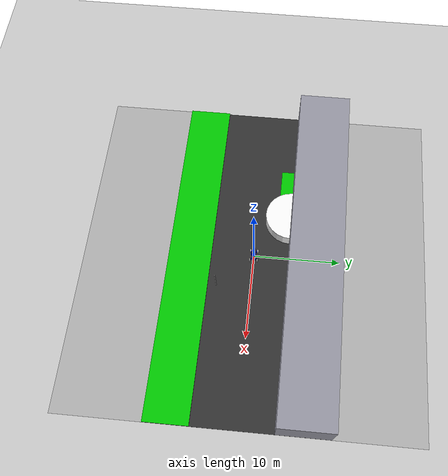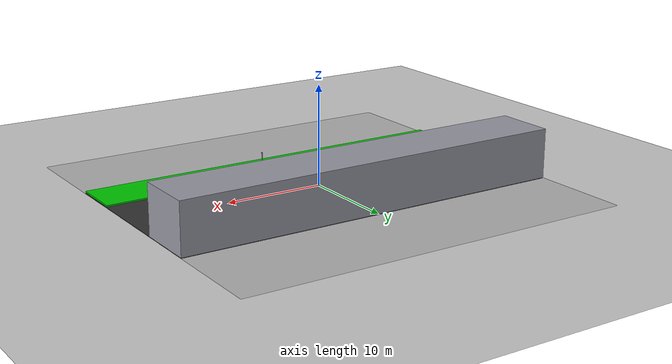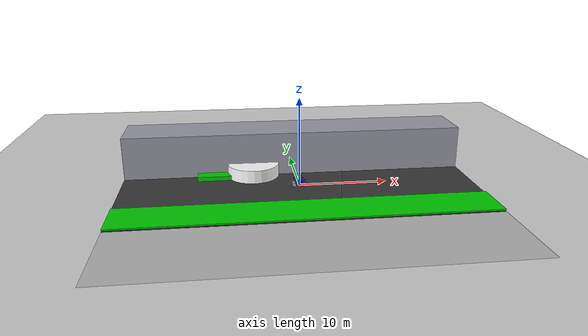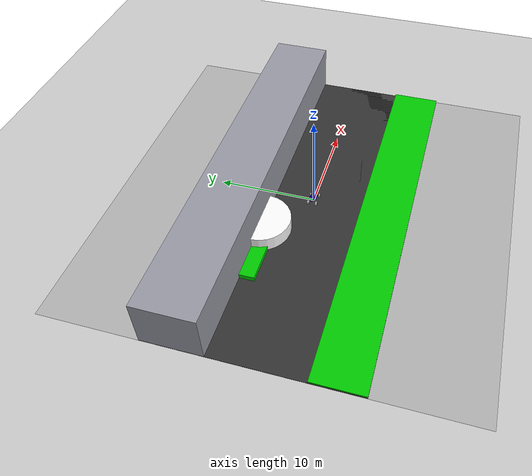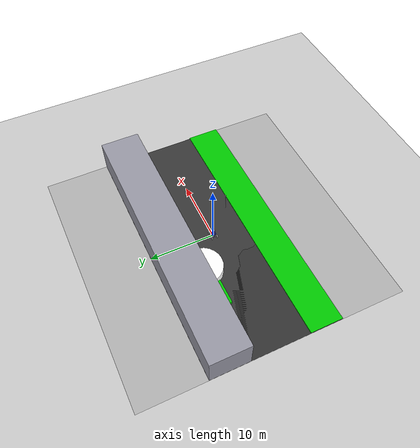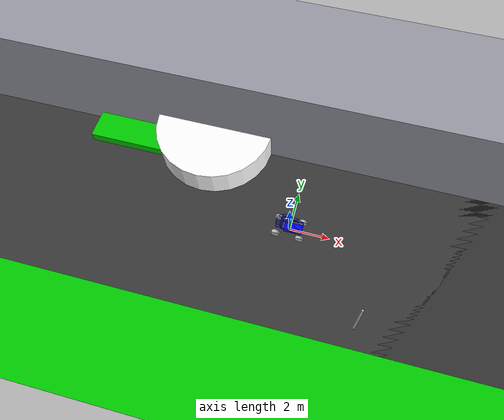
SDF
<sdf version="1.8">
 <world name="campus_world">
  <include><uri>file:///home/deyung/ros2_newws/src/mymasterproject/src/world/road.sdf</uri></include>
  <include>
   <uri>file:///home/deyung/ros2_newws/src/robot_description/worlds/new_car.sdf</uri>
   <name>newcar</name>
   <pose>0 0 0.2 0 0 0</pose>
  </include>
  <physics name="1ms" type="ode">
   <max_step_size>0.001</max_step_size>
   <real_time_factor>1.0</real_time_factor>
  </physics>
  <plugin filename="libactor_pose_ros2.so" name="actor_pose_ros2">
   <base_frame>map</base_frame>
   <name_prefix>actor_</name_prefix>
   <pose_topic>/actors/poses</pose_topic>
   <pose_topic_prefix>/actors/</pose_topic_prefix>
   <actor_yaw_offset_deg>-90</actor_yaw_offset_deg>
   <publish_tf>true</publish_tf>
  </plugin>
  <plugin filename="gz-sim-triggered-publisher-system" name="gz::sim::systems::TriggeredPublisher">
   <input type="gz.msgs.Int32" topic="/keyboard/keypress"><match field="data">16777235</match></input>
   <output type="gz.msgs.Twist" topic="/model/newcar/cmd_vel">linear: {x: 2}, angular: {z: 0.0}</output>
  </plugin>
  <plugin filename="gz-sim-triggered-publisher-system" name="gz::sim::systems::TriggeredPublisher">
   <input type="gz.msgs.Int32" topic="/keyboard/keypress"><match field="data">16777237</match></input>
   <output type="gz.msgs.Twist" topic="/model/newcar/cmd_vel">linear: {x: -2}, angular: {z: 0.0}</output>
  </plugin>
  <plugin filename="gz-sim-triggered-publisher-system" name="gz::sim::systems::TriggeredPublisher">
   <input type="gz.msgs.Int32" topic="/keyboard/keypress"><match field="data">16777234</match></input>
   <output type="gz.msgs.Twist" topic="/model/newcar/cmd_vel">linear: {x: 1.3}, angular: {z: 20}</output>
  </plugin>
  <plugin filename="gz-sim-triggered-publisher-system" name="gz::sim::systems::TriggeredPublisher">
   <input type="gz.msgs.Int32" topic="/keyboard/keypress"><match field="data">16777236</match></input>
   <output type="gz.msgs.Twist" topic="/model/newcar/cmd_vel">linear: {x: 1.3}, angular: {z: -20}</output>
  </plugin>
  <plugin filename="gz-sim-triggered-publisher-system" name="gz::sim::systems::TriggeredPublisher">
   <input type="gz.msgs.Int32" topic="/keyboard/keypress"><match field="data">80</match></input>
   <output type="gz.msgs.Twist" topic="/model/newcar/cmd_vel">linear: {x: 0}, angular: {z: 0}</output>
  </plugin>
  <plugin filename="gz-sim-sensors-system" name="gz::sim::systems::Sensors">
   <render_engine>ogre2</render_engine>
  </plugin>
  <plugin filename="gz-sim-physics-system" name="gz::sim::systems::Physics"/>
  <plugin filename="gz-sim-user-commands-system" name="gz::sim::systems::UserCommands"/>
  <plugin filename="gz-sim-scene-broadcaster-system" name="gz::sim::systems::SceneBroadcaster"/>
  <plugin filename="gz-sim-imu-system" name="gz::sim::systems::Imu"/>
  <plugin filename="gz-sim-contact-system" name="gz::sim::systems::Contact"/>
  <light type="directional" name="sun">
   <pose>0 0 10 0 0 0</pose>
   <diffuse>0.8 0.8 0.8 1</diffuse>
   <specular>0.2 0.2 0.2 1</specular>
   <attenuation>
    <range>1000</range>
    <constant>0.9</constant>
    <linear>0.01</linear>
    <quadratic>0.001</quadratic>
   </attenuation>
   <direction>-0.5 0.1 -0.9</direction>
  </light>
  <model name="ground_plane">
   <static>true</static>
   <link name="link">
    <collision name="collision"><geometry><plane><normal>0 0 1</normal></plane></geometry></collision>
    <visual name="visual">
     <geometry><plane><normal>0 0 1</normal><size>100 100</size></plane></geometry>
     <material>
      <ambient>0.8 0.8 0.8 0</ambient>
      <diffuse>0.8 0.8 0.8 0</diffuse>
      <specular>0.8 0.8 0.8 0</specular>
     </material>
    </visual>
   </link>
  </model>
 </world>
</sdf>

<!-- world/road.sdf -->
<sdf version="1.9">
  <model name="campus">
    <static>true</static>

    <!-- ===== Ground plane ===== -->
    <link name="ground_plane">
      <collision name="collision">
        <geometry>
          <box><size>40 40 0.1</size></box>
        </geometry>
        <pose>0 0 0 0 0 0</pose>
      </collision>
      <visual name="visual">
        <geometry>
          <box><size>40 40 0.1</size></box>
        </geometry>
        <material>
          <ambient>0.35 0.35 0.35 0.2</ambient>
          <diffuse>0.35 0.35 0.35 0.2</diffuse>
        </material>
        <pose>0 0 -0.05 0 0 0</pose>
      </visual>
    </link>

    <!-- ===== Building block ===== -->
    <link name="building_block">
      <pose>0 7 2.5 0 0 0</pose>
      <collision name="collision">
        <geometry><box><size>40 6 5</size></box></geometry>
      </collision>
      <visual name="visual">
        <geometry><box><size>40 6 5</size></box></geometry>
        <material>
          <ambient>0.6 0.6 0.65 1</ambient>
          <diffuse>0.6 0.6 0.65 1</diffuse>
        </material>
      </visual>
    </link>

    <!-- ===== Road ===== -->
    <link name="road">
      <pose>0 0 0 0 0 0</pose>
      <collision name="coll">
        <geometry><box><size>40 20 0.1</size></box></geometry>
        <pose>0 0 0 0 0 0</pose>
      </collision>
      <visual name="vis">
        <geometry><box><size>40 20 0.1</size></box></geometry>
        <material>
          <ambient>0.2 0.2 0.2 1</ambient>
          <diffuse>0.2 0.2 0.2 1</diffuse>
        </material>
        <pose>0 0 -0.05 0 0 0</pose>
      </visual>
    </link>

    <!-- ===== Lamp pole ===== -->
    <link name="lamp_pole_1">
      <pose>4 -4 1.5 0 0 0</pose>
      <collision name="coll">
        <geometry><cylinder><radius>0.05</radius><length>3.0</length></cylinder></geometry>
      </collision>
      <visual name="vis">
        <geometry><cylinder><radius>0.05</radius><length>3.0</length></cylinder></geometry>
      </visual>
    </link>

    <!-- ===== Big lawn ===== -->
    <link name="big_lawn">
      <pose>0 -7.5 0.15 0 0 0</pose>
      <collision name="coll">
        <geometry><box><size>40 5 0.15</size></box></geometry>
      </collision>
      <visual name="vis">
        <geometry><box><size>40 5 0.15</size></box></geometry>
        <material>
          <ambient>0.0 0.6 0.0 1</ambient>
          <diffuse>0.0 0.8 0.0 1</diffuse>
        </material>
      </visual>
    </link>

    <!-- ===== Small lawn ===== -->
    <link name="small_lawn">
      <pose>-9 5 0 0 0 0</pose>
      <collision name="coll">
        <geometry><box><size>5 5 1</size></box></geometry>
      </collision>
      <visual name="vis">
        <geometry><box><size>5 5 1</size></box></geometry>
        <material>
          <ambient>0.0 0.6 0.0 1</ambient>
          <diffuse>0.0 0.8 0.0 1</diffuse>
        </material>
      </visual>
    </link>
    <!-- ===== road block ===== -->
    <link name="road block">
      <pose>-5 4 0 0 0 0</pose>
      <collision name="coll">
        <geometry>
                        <cylinder>
                            <radius>3</radius>
                            <length>3</length>
                        </cylinder>
        </geometry>
      </collision>
      <visual name="vis">
        <geometry>
                        <cylinder>
                            <radius>3</radius>
                            <length>3</length>
                        </cylinder>
        </geometry>
                    <material>
                        <ambient>1.0 1.0 1.0 1</ambient>
                        <diffuse>1.0 1.0 1.0 1</diffuse>
                        <specular>1.0 0.0 0.0 1</specular>
                    </material>
      </visual>
    </link>

  </model>

</sdf>

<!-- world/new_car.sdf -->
<sdf version="1.8">
  <model name="vehicle_blue" canonical_link="chassis">

    <!-- ================= CHASSIS ================= -->
    <link name="chassis">
      <pose>0 0 0.2 0 0 0</pose>

      <inertial>
        <mass>100</mass>
        <inertia>
          <ixx>2</ixx><ixy>0</ixy><ixz>0</ixz>
          <iyy>4</iyy><iyz>0</iyz><izz>5</izz>
        </inertia>
      </inertial>

      <visual name="chassis_visual">
        <geometry>
          <mesh>
            <!-- CHANGE filename if needed -->
            <uri>file:///home/deyung/ros2_newws/src/mymasterproject/src/world/new_car_chassis.stl</uri>
            <scale>0.5 0.5 0.5</scale>
          </mesh>
        </geometry>
        <material>
          <ambient>0 0 1 1</ambient>
          <diffuse>0 0 1 1</diffuse>
        </material>
      </visual>

      <!-- Use a simple collision for stability -->
      <collision name="chassis_collision">
        <geometry>
          <box>
            <size>1.6 0.9 0.4</size>
          </box>
        </geometry>
      </collision>

      <sensor name="imu_sensor" type="imu">
        <always_on>true</always_on>
        <update_rate>50</update_rate>
        <topic>imu</topic>
      </sensor>
    </link>

    <!-- ================= REAR WHEELS ================= -->
    <link name="rear_left_wheel">
      <pose>-0.6 0.42 0 1.5708 1.5708 0</pose>
      <inertial>
        <mass>7</mass>
        <inertia>
          <ixx>0.086</ixx><ixy>0</ixy><ixz>0</ixz>
          <iyy>0.086</iyy><iyz>0</iyz><izz>0.14</izz>
        </inertia>
      </inertial>

      <visual name="rear_left_wheel_visual">
        <geometry>
          <cylinder>
            <radius>0.2</radius>
            <length>0.17</length>
          </cylinder>
        </geometry>
      </visual>

      <collision name="rear_left_wheel_collision">
        <geometry>
          <cylinder>
            <radius>0.2</radius>
            <length>0.17</length>
          </cylinder>
        </geometry>
      </collision>
    </link>

    <link name="rear_right_wheel">
      <pose>-0.6 -0.42 0 1.5708 1.5708 0</pose>
      <inertial>
        <mass>7</mass>
        <inertia>
          <ixx>0.086</ixx><ixy>0</ixy><ixz>0</ixz>
          <iyy>0.086</iyy><iyz>0</iyz><izz>0.14</izz>
        </inertia>
      </inertial>

      <visual name="rear_right_wheel_visual">
        <geometry>
          <cylinder>
            <radius>0.2</radius>
            <length>0.17</length>
          </cylinder>
        </geometry>
      </visual>

      <collision name="rear_right_wheel_collision">
        <geometry>
          <cylinder>
            <radius>0.2</radius>
            <length>0.17</length>
          </cylinder>
        </geometry>
      </collision>
    </link>

    <!-- ================= FRONT STEERING LINKS ================= -->
    <link name="front_left_steering_link">
      <pose>0.6 0.45 0 0 0 0</pose>
      <inertial>
        <mass>0.5</mass>
        <inertia>
          <ixx>0.015</ixx><ixy>0</ixy><ixz>0</ixz>
          <iyy>0.025</iyy><iyz>0</iyz><izz>0.015</izz>
        </inertia>
      </inertial>

      <visual name="front_left_steering_link_visual">
        <geometry>
          <box><size>0.05 0.05 0.05</size></box>
        </geometry>
      </visual>

      <collision name="front_left_steering_link_collision">
        <geometry>
          <box><size>0.05 0.05 0.05</size></box>
        </geometry>
      </collision>
    </link>

    <link name="front_right_steering_link">
      <pose>0.6 -0.45 0 0 0 0</pose>
      <inertial>
        <mass>0.5</mass>
        <inertia>
          <ixx>0.015</ixx><ixy>0</ixy><ixz>0</ixz>
          <iyy>0.025</iyy><iyz>0</iyz><izz>0.015</izz>
        </inertia>
      </inertial>

      <visual name="front_right_steering_link_visual">
        <geometry>
          <box><size>0.05 0.05 0.05</size></box>
        </geometry>
      </visual>

      <collision name="front_right_steering_link_collision">
        <geometry>
          <box><size>0.05 0.05 0.05</size></box>
        </geometry>
      </collision>
    </link>

    <!-- ================= FRONT WHEELS ================= -->
    <link name="front_left_wheel">
      <!-- relative to steering link; keep centered on that link -->
      <pose>0.6 -0.45 0 1.5708 1.5708 0</pose>

      <inertial>
        <mass>5</mass>
        <inertia>
          <ixx>0.057</ixx><ixy>0</ixy><ixz>0</ixz>
          <iyy>0.057</iyy><iyz>0</iyz><izz>0.1</izz>
        </inertia>
      </inertial>

      <visual name="front_left_wheel_visual">
        <geometry>
          <cylinder>
            <radius>0.2</radius>
            <length>0.13</length>
          </cylinder>
        </geometry>
      </visual>

      <collision name="front_left_wheel_collision">
        <geometry>
          <cylinder>
            <radius>0.2</radius>
            <length>0.13</length>
          </cylinder>
        </geometry>
      </collision>
    </link>

    <link name="front_right_wheel">
      <pose>0.6 0.45 0 1.5708 1.5708 0</pose>

      <inertial>
        <mass>5</mass>
        <inertia>
          <ixx>0.057</ixx><ixy>0</ixy><ixz>0</ixz>
          <iyy>0.057</iyy><iyz>0</iyz><izz>0.1</izz>
        </inertia>
      </inertial>

      <visual name="front_right_wheel_visual">
        <geometry>
          <cylinder>
            <radius>0.2</radius>
            <length>0.13</length>
          </cylinder>
        </geometry>
      </visual>

      <collision name="front_right_wheel_collision">
        <geometry>
          <cylinder>
            <radius>0.2</radius>
            <length>0.13</length>
          </cylinder>
        </geometry>
      </collision>
    </link>
    <link name="lidar_link">
  <!-- position relative to chassis center -->
      <pose>0.8 0 0.5 0 0 0</pose>

      <visual name="lidar_visual">
        <geometry><box><size>0.05 0.05 0.05</size></box></geometry>
      </visual>

      <collision name="lidar_collision">
        <geometry><box><size>0.05 0.05 0.05</size></box></geometry>
      </collision>

      <sensor name="lidar" type="gpu_lidar">
        <always_on>true</always_on>
        <update_rate>10</update_rate>
        <topic>/scan</topic>
        <ray>
          <scan>
            <horizontal>
              <samples>720</samples>
              <resolution>1</resolution>
              <min_angle>-3.14159</min_angle>
              <max_angle>3.14159</max_angle>
            </horizontal>
          </scan>
          <range>
            <min>0.12</min>
            <max>30.0</max>
            <resolution>0.01</resolution>
          </range>
        </ray>
      </sensor>
    </link>
    <joint name="lidar_joint" type="fixed">
      <parent>chassis</parent>
      <child>lidar_link</child>
    </joint>

    <!-- ================= JOINTS ================= -->
    <joint name="rear_left_wheel_joint" type="revolute">
      <parent>chassis</parent>
      <child>rear_left_wheel</child>
      <axis><xyz>0 0 -1</xyz></axis>
    </joint>

    <joint name="rear_right_wheel_joint" type="revolute">
      <parent>chassis</parent>
      <child>rear_right_wheel</child>
      <axis><xyz>0 0 -1</xyz></axis>
    </joint>

    <joint name="front_left_steering_joint" type="revolute">
      <parent>chassis</parent>
      <child>front_left_steering_link</child>
      <axis><xyz>0 0 1</xyz></axis>
    </joint>

    <joint name="front_right_steering_joint" type="revolute">
      <parent>chassis</parent>
      <child>front_right_steering_link</child>
      <axis><xyz>0 0 1</xyz></axis>
    </joint>

    <joint name="front_left_wheel_joint" type="revolute">
      <parent>front_left_steering_link</parent>
      <child>front_left_wheel</child>
      <axis><xyz>0 0 -1</xyz></axis>
    </joint>

    <joint name="front_right_wheel_joint" type="revolute">
      <parent>front_right_steering_link</parent>
      <child>front_right_wheel</child>
      <axis><xyz>0 0 -1</xyz></axis>
    </joint>

    <!-- ================= ACKERMANN PLUGIN ================= -->
   <plugin filename="libgz-sim-ackermann-steering-system.so"
        name="gz::sim::systems::AckermannSteering">

     <cmd_vel_topic>/model/newcar/cmd_vel</cmd_vel_topic>

     <left_joint>rear_left_wheel_joint</left_joint>
     <right_joint>rear_right_wheel_joint</right_joint>

     <left_steering_joint>front_left_steering_joint</left_steering_joint>
     <right_steering_joint>front_right_steering_joint</right_steering_joint>

     <wheel_base>1.25</wheel_base>
     <wheel_separation>0.9</wheel_separation>
     <wheel_radius>0.2</wheel_radius>
     <steering_limit>0.5</steering_limit>
   </plugin>

  </model>
</sdf>
